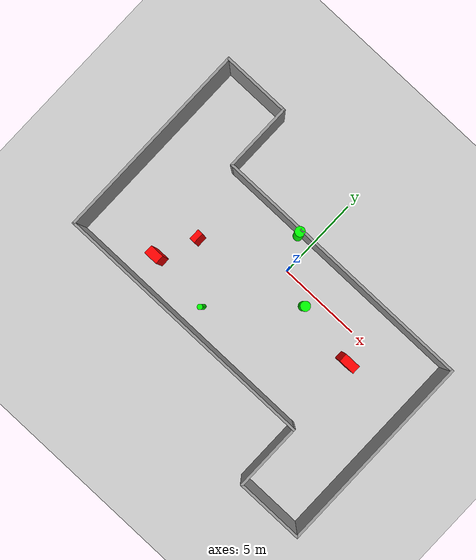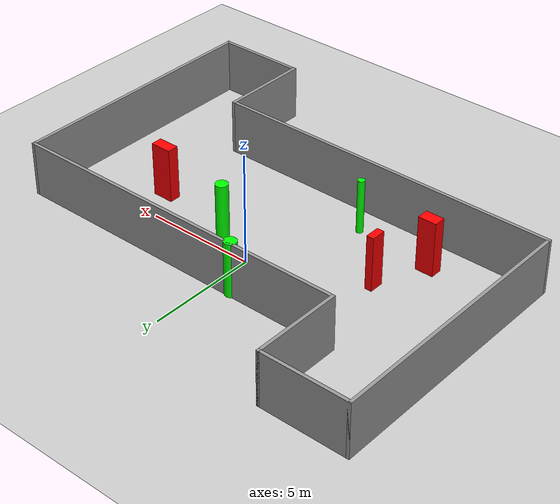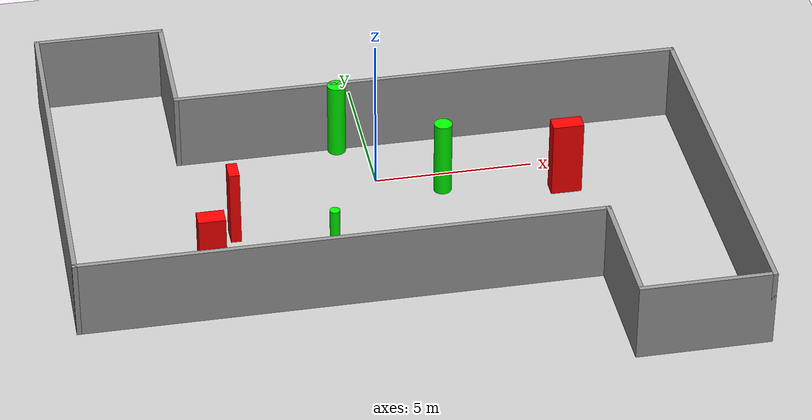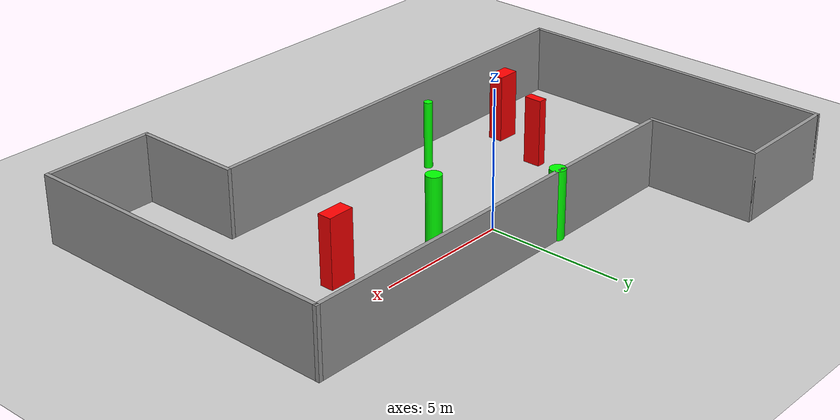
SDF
<sdf version="1.7">
 <world name="default">
  <light name="sun" type="directional">
   <pose>0 0 10 0 -0 0</pose>
   <diffuse>0.8 0.8 0.8 1</diffuse>
   <specular>0.2 0.2 0.2 1</specular>
   <attenuation>
    <range>1000</range>
    <constant>0.9</constant>
    <linear>0.01</linear>
    <quadratic>0.001</quadratic>
   </attenuation>
   <direction>-0.5 0.1 -0.9</direction>
   <spot><inner_angle>0</inner_angle><outer_angle>0</outer_angle><falloff>0</falloff></spot>
  </light>
  <model name="ground_plane">
   <static>1</static>
   <link name="link">
    <collision name="collision">
     <geometry><plane><normal>0 0 1</normal><size>100 100</size></plane></geometry>
     <surface>
      <contact><collide_bitmask>65535</collide_bitmask></contact>
      <friction><ode><mu>100</mu><mu2>50</mu2></ode></friction>
     </surface>
    </collision>
    <visual name="visual">
     <cast_shadows>0</cast_shadows>
     <geometry><plane><normal>0 0 1</normal><size>100 100</size></plane></geometry>
     <material>
      <script><uri>file://media/materials/scripts/gazebo.material</uri><name>Gazebo/Grey</name></script>
     </material>
    </visual>
   </link>
  </model>
  <gravity>0 0 -9.8</gravity>
  <magnetic_field>6e-06 2.3e-05 -4.2e-05</magnetic_field>
  <atmosphere type="adiabatic"/>
  <physics type="ode">
   <max_step_size>0.001</max_step_size>
   <real_time_factor>1</real_time_factor>
   <real_time_update_rate>1000</real_time_update_rate>
  </physics>
  <scene><ambient>0.4 0.4 0.4 1</ambient><background>0.7 0.7 0.7 1</background><shadows>1</shadows></scene>
  <spherical_coordinates>
   <surface_model>EARTH_WGS84</surface_model>
   <latitude_deg>0</latitude_deg>
   <longitude_deg>0</longitude_deg>
   <elevation>0</elevation>
   <heading_deg>0</heading_deg>
  </spherical_coordinates>
  <model name="my_base_walls">
   <link name="Wall_13">
    <collision name="Wall_13_Collision">
     <geometry><box><size>12.15 0.15 2.5</size></box></geometry>
     <pose>0 0 1.25 0 -0 0</pose>
    </collision>
    <visual name="Wall_13_Visual">
     <pose>0 0 1.25 0 -0 0</pose>
     <geometry><box><size>12.15 0.15 2.5</size></box></geometry>
     <material>
      <script><uri>file://media/materials/scripts/gazebo.material</uri><name>Gazebo/Grey</name></script>
      <ambient>1 1 1 1</ambient>
     </material>
     <meta><layer>0</layer></meta>
    </visual>
    <pose>10 -2 0 0 -0 1.5708</pose>
   </link>
   <link name="Wall_15">
    <collision name="Wall_15_Collision">
     <geometry><box><size>16.15 0.15 2.5</size></box></geometry>
     <pose>0 0 1.25 0 -0 0</pose>
    </collision>
    <visual name="Wall_15_Visual">
     <pose>0 0 1.25 0 -0 0</pose>
     <geometry><box><size>16.15 0.15 2.5</size></box></geometry>
     <material>
      <script><uri>file://media/materials/scripts/gazebo.material</uri><name>Gazebo/Grey</name></script>
      <ambient>1 1 1 1</ambient>
     </material>
     <meta><layer>0</layer></meta>
    </visual>
    <pose>2 4 0 0 -0 3.14159</pose>
   </link>
   <link name="Wall_17">
    <collision name="Wall_17_Collision">
     <geometry><box><size>4.15 0.15 2.5</size></box></geometry>
     <pose>0 0 1.25 0 -0 0</pose>
    </collision>
    <visual name="Wall_17_Visual">
     <pose>0 0 1.25 0 -0 0</pose>
     <geometry><box><size>4.15 0.15 2.5</size></box></geometry>
     <material>
      <script><uri>file://media/materials/scripts/gazebo.material</uri><name>Gazebo/Grey</name></script>
      <ambient>1 1 1 1</ambient>
     </material>
     <meta><layer>0</layer></meta>
    </visual>
    <pose>6 -6 0 0 -0 -1.5708</pose>
   </link>
   <link name="Wall_19">
    <collision name="Wall_19_Collision">
     <geometry><box><size>12.15 0.15 2.5</size></box></geometry>
     <pose>0 0 1.25 0 -0 0</pose>
    </collision>
    <visual name="Wall_19_Visual">
     <pose>0 0 1.25 0 -0 0</pose>
     <geometry><box><size>12.15 0.15 2.5</size></box></geometry>
     <material>
      <script><uri>file://media/materials/scripts/gazebo.material</uri><name>Gazebo/Grey</name></script>
      <ambient>1 1 1 1</ambient>
     </material>
     <meta><layer>0</layer></meta>
    </visual>
    <pose>-10 2 0 0 -0 1.5708</pose>
   </link>
   <link name="Wall_21">
    <collision name="Wall_21_Collision">
     <geometry><box><size>4.15 0.15 2.5</size></box></geometry>
     <pose>0 0 1.25 0 -0 0</pose>
    </collision>
    <visual name="Wall_21_Visual">
     <pose>0 0 1.25 0 -0 0</pose>
     <geometry><box><size>4.15 0.15 2.5</size></box></geometry>
     <material>
      <script><uri>file://media/materials/scripts/gazebo.material</uri><name>Gazebo/Grey</name></script>
      <ambient>1 1 1 1</ambient>
     </material>
     <meta><layer>0</layer></meta>
    </visual>
    <pose>-8 8 0 0 -0 0</pose>
   </link>
   <link name="Wall_23">
    <collision name="Wall_23_Collision">
     <geometry><box><size>4.15 0.15 2.5</size></box></geometry>
     <pose>0 0 1.25 0 -0 0</pose>
    </collision>
    <visual name="Wall_23_Visual">
     <pose>0 0 1.25 0 -0 0</pose>
     <geometry><box><size>4.15 0.15 2.5</size></box></geometry>
     <material>
      <script><uri>file://media/materials/scripts/gazebo.material</uri><name>Gazebo/Grey</name></script>
      <ambient>1 1 1 1</ambient>
     </material>
     <meta><layer>0</layer></meta>
    </visual>
    <pose>-6 6 0 0 -0 -1.5708</pose>
   </link>
   <link name="Wall_25">
    <collision name="Wall_25_Collision">
     <geometry><box><size>4.15 0.15 2.5</size></box></geometry>
     <pose>0 0 1.25 0 -0 0</pose>
    </collision>
    <visual name="Wall_25_Visual">
     <pose>0 0 1.25 0 -0 0</pose>
     <geometry><box><size>4.15 0.15 2.5</size></box></geometry>
     <material>
      <script><uri>file://media/materials/scripts/gazebo.material</uri><name>Gazebo/Grey</name></script>
      <ambient>1 1 1 1</ambient>
     </material>
     <meta><layer>0</layer></meta>
    </visual>
    <pose>8 -8 0 0 -0 0</pose>
   </link>
   <link name="Wall_9">
    <collision name="Wall_9_Collision">
     <geometry><box><size>16.15 0.15 2.5</size></box></geometry>
     <pose>0 0 1.25 0 -0 0</pose>
    </collision>
    <visual name="Wall_9_Visual">
     <pose>0 0 1.25 0 -0 0</pose>
     <geometry><box><size>16.15 0.15 2.5</size></box></geometry>
     <material>
      <script><uri>file://media/materials/scripts/gazebo.material</uri><name>Gazebo/Grey</name></script>
      <ambient>1 1 1 1</ambient>
     </material>
     <meta><layer>0</layer></meta>
    </visual>
    <pose>-2 -4 0 0 -0 3.14159</pose>
   </link>
   <static>1</static>
   <pose>-0 -2 0 0 -0 0</pose>
  </model>
  <model name="cylinder1">
   <static>1</static>
   <link name="link">
    <inertial>
     <mass>1</mass>
     <inertia><ixx>0.5</ixx><ixy>0</ixy><ixz>0</ixz><iyy>0.5</iyy><iyz>0</iyz><izz>1</izz></inertia>
    </inertial>
    <collision name="collision">
     <geometry><cylinder><radius>0.1558865276273478</radius><length>2.5</length></cylinder></geometry>
    </collision>
    <visual name="visual">
     <geometry><cylinder><radius>0.1558865276273478</radius><length>2.5</length></cylinder></geometry>
     <material>
      <ambient>0 1 0 1</ambient>
      <diffuse>0 1 0 1</diffuse>
      <specular>0.1 0.1 0.1 1</specular>
      <emissive>0 0 0 0</emissive>
     </material>
    </visual>
   </link>
   <pose>-2.074532709737797 -4.665323563836782 1.25 0 0 0</pose>
  </model>
  <model name="cylinder2">
   <static>1</static>
   <link name="link">
    <inertial>
     <mass>1</mass>
     <inertia><ixx>0.5</ixx><ixy>0</ixy><ixz>0</ixz><iyy>0.5</iyy><iyz>0</iyz><izz>1</izz></inertia>
    </inertial>
    <collision name="collision">
     <geometry><cylinder><radius>0.28798501034136853</radius><length>2.5</length></cylinder></geometry>
    </collision>
    <visual name="visual">
     <geometry><cylinder><radius>0.28798501034136853</radius><length>2.5</length></cylinder></geometry>
     <material>
      <ambient>0 1 0 1</ambient>
      <diffuse>0 1 0 1</diffuse>
      <specular>0.1 0.1 0.1 1</specular>
      <emissive>0 0 0 0</emissive>
     </material>
    </visual>
   </link>
   <pose>-0.9295926334804312 1.8776027946638933 1.25 0 0 0</pose>
  </model>
  <model name="cylinder3">
   <static>1</static>
   <link name="link">
    <inertial>
     <mass>1</mass>
     <inertia><ixx>0.5</ixx><ixy>0</ixy><ixz>0</ixz><iyy>0.5</iyy><iyz>0</iyz><izz>1</izz></inertia>
    </inertial>
    <collision name="collision">
     <geometry><cylinder><radius>0.2825113734709941</radius><length>2.5</length></cylinder></geometry>
    </collision>
    <visual name="visual">
     <geometry><cylinder><radius>0.2825113734709941</radius><length>2.5</length></cylinder></geometry>
     <material>
      <ambient>0 1 0 1</ambient>
      <diffuse>0 1 0 1</diffuse>
      <specular>0.1 0.1 0.1 1</specular>
      <emissive>0 0 0 0</emissive>
     </material>
    </visual>
   </link>
   <pose>1.9861985130377784 -0.8148235921080635 1.25 0 0 0</pose>
  </model>
  <model name="box1">
   <static>1</static>
   <link name="link">
    <inertial>
     <mass>1</mass>
     <inertia><ixx>0.083</ixx><ixy>0</ixy><ixz>0</ixz><iyy>0.083</iyy><iyz>0</iyz><izz>0.083</izz></inertia>
    </inertial>
    <collision name="collision">
     <geometry><box><size>0.32786129148897936 0.6576649069804889 2.5</size></box></geometry>
    </collision>
    <visual name="visual">
     <geometry><box><size>0.32786129148897936 0.6576649069804889 2.5</size></box></geometry>
     <material>
      <ambient>1 0 0 1</ambient>
      <diffuse>1 0 0 1</diffuse>
      <specular>0.1 0.1 0.1 1</specular>
      <emissive>0 0 0 0</emissive>
     </material>
    </visual>
    <sensor name="my_contact" type="contact">
     <contact><collision>box_collision</collision><topic>__default_topic__</topic></contact>
    </sensor>
   </link>
   <pose>-4.783635922253962 -2.0692502217573923 1.25 0 0 0</pose>
  </model>
  <model name="box2">
   <static>1</static>
   <link name="link">
    <inertial>
     <mass>1</mass>
     <inertia><ixx>0.083</ixx><ixy>0</ixy><ixz>0</ixz><iyy>0.083</iyy><iyz>0</iyz><izz>0.083</izz></inertia>
    </inertial>
    <collision name="collision">
     <geometry><box><size>0.8327063711005545 0.5397255236323786 2.5</size></box></geometry>
    </collision>
    <visual name="visual">
     <geometry><box><size>0.8327063711005545 0.5397255236323786 2.5</size></box></geometry>
     <material>
      <ambient>1 0 0 1</ambient>
      <diffuse>1 0 0 1</diffuse>
      <specular>0.1 0.1 0.1 1</specular>
      <emissive>0 0 0 0</emissive>
     </material>
    </visual>
    <sensor name="my_contact" type="contact">
     <contact><collision>box_collision</collision><topic>__default_topic__</topic></contact>
    </sensor>
   </link>
   <pose>-5.759160666648903 -4.320957461339075 1.25 0 0 0</pose>
  </model>
  <model name="box3">
   <static>1</static>
   <link name="link">
    <inertial>
     <mass>1</mass>
     <inertia><ixx>0.083</ixx><ixy>0</ixy><ixz>0</ixz><iyy>0.083</iyy><iyz>0</iyz><izz>0.083</izz></inertia>
    </inertial>
    <collision name="collision">
     <geometry><box><size>0.9684317524537023 0.5131911927504502 2.5</size></box></geometry>
    </collision>
    <visual name="visual">
     <geometry><box><size>0.9684317524537023 0.5131911927504502 2.5</size></box></geometry>
     <material>
      <ambient>1 0 0 1</ambient>
      <diffuse>1 0 0 1</diffuse>
      <specular>0.1 0.1 0.1 1</specular>
      <emissive>0 0 0 0</emissive>
     </material>
    </visual>
    <sensor name="my_contact" type="contact">
     <contact><collision>box_collision</collision><topic>__default_topic__</topic></contact>
    </sensor>
   </link>
   <pose>5.778260544906766 -1.4339440030471051 1.25 0 0 0</pose>
  </model>
 </world>
</sdf>
